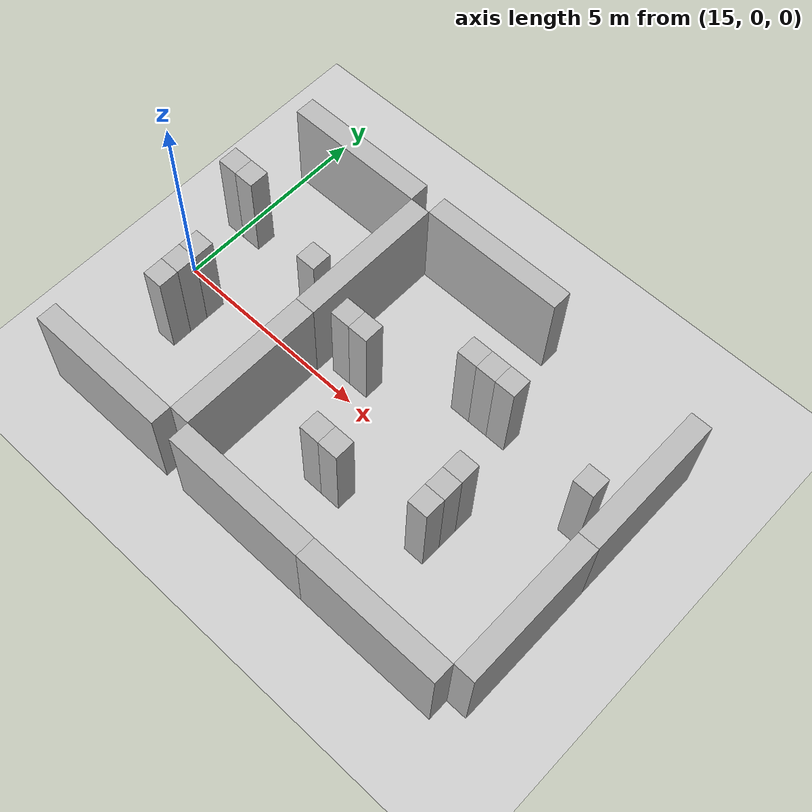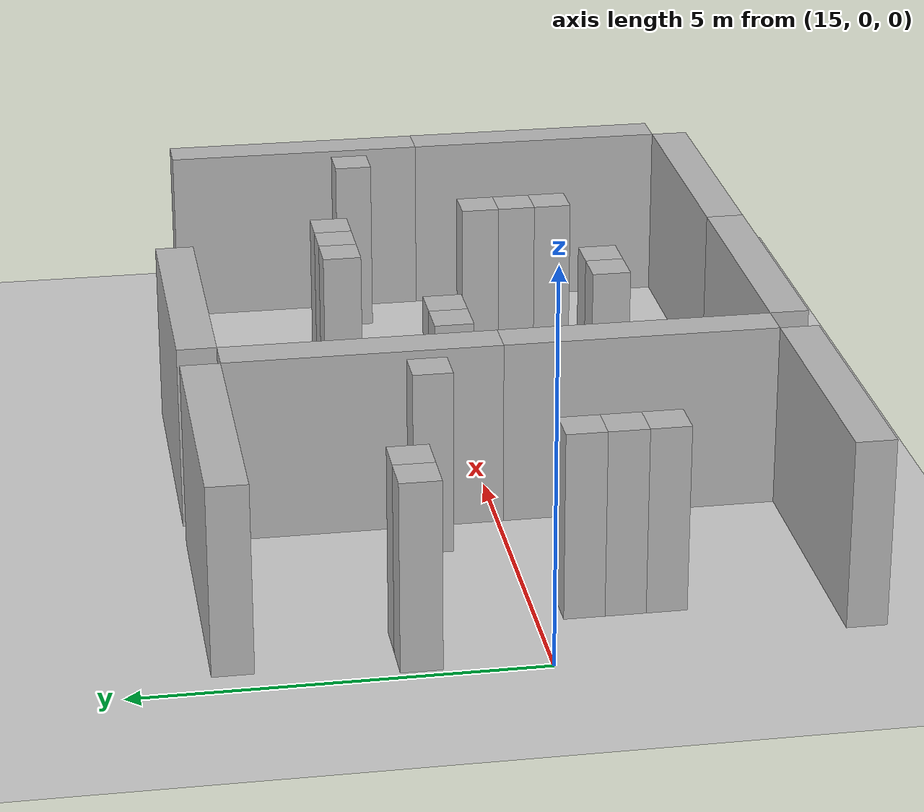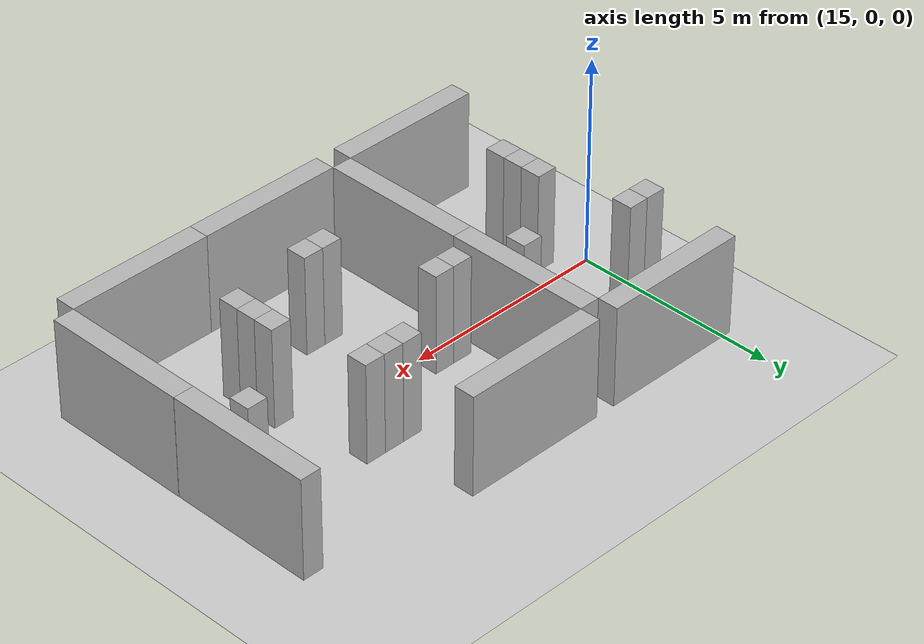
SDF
<sdf version="1.6">
 <world name="default">
  <model name="ground_plane">
   <static>1</static>
   <link name="link">
    <collision name="collision">
     <geometry><plane><normal>0 0 1</normal><size>100 100</size></plane></geometry>
     <surface><friction><ode><mu>100</mu><mu2>50</mu2></ode></friction></surface>
    </collision>
    <visual name="visual">
     <cast_shadows>0</cast_shadows>
     <geometry><plane><normal>0 0 1</normal><size>100 100</size></plane></geometry>
     <material>
      <script><uri>file://media/materials/scripts/gazebo.material</uri><name>Gazebo/Grey</name></script>
     </material>
    </visual>
   </link>
  </model>
  <model name="mywall0_1_clone_1_clone_0">
   <static>1</static>
   <link name="link">
    <pose>0 0 1.4 0 -0 0</pose>
    <collision name="collision"><geometry><box><size>3.5 0.5 2.4</size></box></geometry></collision>
    <visual name="visual">
     <cast_shadows>0</cast_shadows>
     <geometry><box><size>3.5 0.5 2.4</size></box></geometry>
     <material>
      <script>
       <uri>model://mywall0/materials/scripts</uri>
       <uri>model://mywall0/materials/textures</uri>
       <name>vrc/mywall0</name>
      </script>
     </material>
    </visual>
   </link>
   <pose>16.75 3.75 0 0 -0 0</pose>
  </model>
  <model name="mywall0_1_clone_1_clone_1">
   <static>1</static>
   <link name="link">
    <pose>0 0 1.4 0 -0 0</pose>
    <collision name="collision"><geometry><box><size>3.5 0.5 2.4</size></box></geometry></collision>
    <visual name="visual">
     <cast_shadows>0</cast_shadows>
     <geometry><box><size>3.5 0.5 2.4</size></box></geometry>
     <material>
      <script>
       <uri>model://mywall0/materials/scripts</uri>
       <uri>model://mywall0/materials/textures</uri>
       <name>vrc/mywall0</name>
      </script>
     </material>
    </visual>
   </link>
   <pose>16.75 -3.75 0 0 -0 0</pose>
  </model>
  <model name="mywall0_4_clone_0_clone_clone_0">
   <static>1</static>
   <link name="link">
    <pose>0 0 1.4 0 -0 0</pose>
    <collision name="collision"><geometry><box><size>3.5 0.5 2.4</size></box></geometry></collision>
    <visual name="visual">
     <cast_shadows>0</cast_shadows>
     <geometry><box><size>3.5 0.5 2.4</size></box></geometry>
     <material>
      <script>
       <uri>model://mywall0/materials/scripts</uri>
       <uri>model://mywall0/materials/textures</uri>
       <name>vrc/mywall0</name>
      </script>
     </material>
    </visual>
   </link>
   <pose>18.75 1.75 0 0 -0 1.57</pose>
  </model>
  <model name="mywall0_4_clone_0_clone_clone_0_clone">
   <static>1</static>
   <link name="link">
    <pose>0 0 1.4 0 -0 0</pose>
    <collision name="collision"><geometry><box><size>3.5 0.5 2.4</size></box></geometry></collision>
    <visual name="visual">
     <cast_shadows>0</cast_shadows>
     <geometry><box><size>3.5 0.5 2.4</size></box></geometry>
     <material>
      <script>
       <uri>model://mywall0/materials/scripts</uri>
       <uri>model://mywall0/materials/textures</uri>
       <name>vrc/mywall0</name>
      </script>
     </material>
    </visual>
   </link>
   <pose>18.75 -1.75 0 0 -0 1.57</pose>
  </model>
  <model name="mywall0_1_clone_1_clone_2">
   <static>1</static>
   <link name="link">
    <pose>0 0 1.4 0 -0 0</pose>
    <collision name="collision"><geometry><box><size>3.5 0.5 2.4</size></box></geometry></collision>
    <visual name="visual">
     <cast_shadows>0</cast_shadows>
     <geometry><box><size>3.5 0.5 2.4</size></box></geometry>
     <material>
      <script>
       <uri>model://mywall0/materials/scripts</uri>
       <uri>model://mywall0/materials/textures</uri>
       <name>vrc/mywall0</name>
      </script>
     </material>
    </visual>
   </link>
   <pose>20.75 3.75 0 0 -0 0</pose>
  </model>
  <model name="mywall0_1_clone_1_clone_4">
   <static>1</static>
   <link name="link">
    <pose>0 0 1.4 0 -0 0</pose>
    <collision name="collision"><geometry><box><size>3.5 0.5 2.4</size></box></geometry></collision>
    <visual name="visual">
     <cast_shadows>0</cast_shadows>
     <geometry><box><size>3.5 0.5 2.4</size></box></geometry>
     <material>
      <script>
       <uri>model://mywall0/materials/scripts</uri>
       <uri>model://mywall0/materials/textures</uri>
       <name>vrc/mywall0</name>
      </script>
     </material>
    </visual>
   </link>
   <pose>20.75 -3.75 0 0 -0 0</pose>
  </model>
  <model name="mywall0_1_clone_1_clone_5">
   <static>1</static>
   <link name="link">
    <pose>0 0 1.4 0 -0 0</pose>
    <collision name="collision"><geometry><box><size>3.5 0.5 2.4</size></box></geometry></collision>
    <visual name="visual">
     <cast_shadows>0</cast_shadows>
     <geometry><box><size>3.5 0.5 2.4</size></box></geometry>
     <material>
      <script>
       <uri>model://mywall0/materials/scripts</uri>
       <uri>model://mywall0/materials/textures</uri>
       <name>vrc/mywall0</name>
      </script>
     </material>
    </visual>
   </link>
   <pose>24.25 -3.75 0 0 -0 0</pose>
  </model>
  <model name="mywall0_4_clone_0_clone_clone_0_clone_0">
   <static>1</static>
   <link name="link">
    <pose>0 0 1.4 0 -0 0</pose>
    <collision name="collision"><geometry><box><size>3.5 0.5 2.4</size></box></geometry></collision>
    <visual name="visual">
     <cast_shadows>0</cast_shadows>
     <geometry><box><size>3.5 0.5 2.4</size></box></geometry>
     <material>
      <script>
       <uri>model://mywall0/materials/scripts</uri>
       <uri>model://mywall0/materials/textures</uri>
       <name>vrc/mywall0</name>
      </script>
     </material>
    </visual>
   </link>
   <pose>26.25 1.75 0 0 -0 1.57</pose>
  </model>
  <model name="mywall0_4_clone_0_clone_clone_0_clone_1">
   <static>1</static>
   <link name="link">
    <pose>0 0 1.4 0 -0 0</pose>
    <collision name="collision"><geometry><box><size>3.5 0.5 2.4</size></box></geometry></collision>
    <visual name="visual">
     <cast_shadows>0</cast_shadows>
     <geometry><box><size>3.5 0.5 2.4</size></box></geometry>
     <material>
      <script>
       <uri>model://mywall0/materials/scripts</uri>
       <uri>model://mywall0/materials/textures</uri>
       <name>vrc/mywall0</name>
      </script>
     </material>
    </visual>
   </link>
   <pose>26.25 -1.75 0 0 -0 1.57</pose>
  </model>
  <model name="mypillar_1_clone_clone">
   <static>1</static>
   <link name="link">
    <pose>0 0 1.4 0 -0 0</pose>
    <collision name="collision"><geometry><box><size>0.5 0.5 2.4</size></box></geometry></collision>
    <visual name="visual">
     <cast_shadows>0</cast_shadows>
     <geometry><box><size>0.5 0.5 2.4</size></box></geometry>
     <material>
      <script>
       <uri>model://mypillar/materials/scripts</uri>
       <uri>model://mypillar/materials/textures</uri>
       <name>vrc/mypillar</name>
      </script>
     </material>
    </visual>
   </link>
   <pose>15 1.6 0 0 -0 0</pose>
  </model>
  <model name="mypillar_1_clone_clone_0">
   <static>1</static>
   <link name="link">
    <pose>0 0 1.4 0 -0 0</pose>
    <collision name="collision"><geometry><box><size>0.5 0.5 2.4</size></box></geometry></collision>
    <visual name="visual">
     <cast_shadows>0</cast_shadows>
     <geometry><box><size>0.5 0.5 2.4</size></box></geometry>
     <material>
      <script>
       <uri>model://mypillar/materials/scripts</uri>
       <uri>model://mypillar/materials/textures</uri>
       <name>vrc/mypillar</name>
      </script>
     </material>
    </visual>
   </link>
   <pose>15.5 1.6 0 0 -0 0</pose>
  </model>
  <model name="mypillar_1_clone_clone_4">
   <static>1</static>
   <link name="link">
    <pose>0 0 1.4 0 -0 0</pose>
    <collision name="collision"><geometry><box><size>0.5 0.5 2.4</size></box></geometry></collision>
    <visual name="visual">
     <cast_shadows>0</cast_shadows>
     <geometry><box><size>0.5 0.5 2.4</size></box></geometry>
     <material>
      <script>
       <uri>model://mypillar/materials/scripts</uri>
       <uri>model://mypillar/materials/textures</uri>
       <name>vrc/mypillar</name>
      </script>
     </material>
    </visual>
   </link>
   <pose>16 -1.5 0 0 -0 0</pose>
  </model>
  <model name="mypillar_1_clone_clone_4_clone">
   <static>1</static>
   <link name="link">
    <pose>0 0 1.4 0 -0 0</pose>
    <collision name="collision"><geometry><box><size>0.5 0.5 2.4</size></box></geometry></collision>
    <visual name="visual">
     <cast_shadows>0</cast_shadows>
     <geometry><box><size>0.5 0.5 2.4</size></box></geometry>
     <material>
      <script>
       <uri>model://mypillar/materials/scripts</uri>
       <uri>model://mypillar/materials/textures</uri>
       <name>vrc/mypillar</name>
      </script>
     </material>
    </visual>
   </link>
   <pose>16 -1 0 0 -0 0</pose>
  </model>
  <model name="mypillar_1_clone_clone_4_clone_0">
   <static>1</static>
   <link name="link">
    <pose>0 0 1.4 0 -0 0</pose>
    <collision name="collision"><geometry><box><size>0.5 0.5 2.4</size></box></geometry></collision>
    <visual name="visual">
     <cast_shadows>0</cast_shadows>
     <geometry><box><size>0.5 0.5 2.4</size></box></geometry>
     <material>
      <script>
       <uri>model://mypillar/materials/scripts</uri>
       <uri>model://mypillar/materials/textures</uri>
       <name>vrc/mypillar</name>
      </script>
     </material>
    </visual>
   </link>
   <pose>16 -0.5 0 0 -0 0</pose>
  </model>
  <model name="mypillar_1_clone_clone_4_clone_1">
   <static>1</static>
   <link name="link">
    <pose>0 0 1.4 0 -0 0</pose>
    <collision name="collision"><geometry><box><size>0.5 0.5 2.4</size></box></geometry></collision>
    <visual name="visual">
     <cast_shadows>0</cast_shadows>
     <geometry><box><size>0.5 0.5 2.4</size></box></geometry>
     <material>
      <script>
       <uri>model://mypillar/materials/scripts</uri>
       <uri>model://mypillar/materials/textures</uri>
       <name>vrc/mypillar</name>
      </script>
     </material>
    </visual>
   </link>
   <pose>18 1 0 0 -0 0</pose>
  </model>
  <model name="mypillar_1_clone_clone_4_clone_2_clone_21">
   <static>1</static>
   <link name="link">
    <pose>0 0 1.4 0 -0 0</pose>
    <collision name="collision"><geometry><box><size>0.5 0.5 2.4</size></box></geometry></collision>
    <visual name="visual">
     <cast_shadows>0</cast_shadows>
     <geometry><box><size>0.5 0.5 2.4</size></box></geometry>
     <material>
      <script>
       <uri>model://mypillar/materials/scripts</uri>
       <uri>model://mypillar/materials/textures</uri>
       <name>vrc/mypillar</name>
      </script>
     </material>
    </visual>
   </link>
   <pose>19.5 0.5 0 0 -0 0</pose>
  </model>
  <model name="mypillar_1_clone_clone_4_clone_2_clone_22">
   <static>1</static>
   <link name="link">
    <pose>0 0 1.4 0 -0 0</pose>
    <collision name="collision"><geometry><box><size>0.5 0.5 2.4</size></box></geometry></collision>
    <visual name="visual">
     <cast_shadows>0</cast_shadows>
     <geometry><box><size>0.5 0.5 2.4</size></box></geometry>
     <material>
      <script>
       <uri>model://mypillar/materials/scripts</uri>
       <uri>model://mypillar/materials/textures</uri>
       <name>vrc/mypillar</name>
      </script>
     </material>
    </visual>
   </link>
   <pose>20 0.5 0 0 -0 0</pose>
  </model>
  <model name="mypillar_1_clone_clone_4_clone_2_clone_23">
   <static>1</static>
   <link name="link">
    <pose>0 0 1.4 0 -0 0</pose>
    <collision name="collision"><geometry><box><size>0.5 0.5 2.4</size></box></geometry></collision>
    <visual name="visual">
     <cast_shadows>0</cast_shadows>
     <geometry><box><size>0.5 0.5 2.4</size></box></geometry>
     <material>
      <script>
       <uri>model://mypillar/materials/scripts</uri>
       <uri>model://mypillar/materials/textures</uri>
       <name>vrc/mypillar</name>
      </script>
     </material>
    </visual>
   </link>
   <pose>22 1.6 0 0 -0 0</pose>
  </model>
  <model name="mypillar_1_clone_clone_4_clone_2_clone_24">
   <static>1</static>
   <link name="link">
    <pose>0 0 1.4 0 -0 0</pose>
    <collision name="collision"><geometry><box><size>0.5 0.5 2.4</size></box></geometry></collision>
    <visual name="visual">
     <cast_shadows>0</cast_shadows>
     <geometry><box><size>0.5 0.5 2.4</size></box></geometry>
     <material>
      <script>
       <uri>model://mypillar/materials/scripts</uri>
       <uri>model://mypillar/materials/textures</uri>
       <name>vrc/mypillar</name>
      </script>
     </material>
    </visual>
   </link>
   <pose>22.5 1.6 0 0 -0 0</pose>
  </model>
  <model name="mypillar_1_clone_clone_4_clone_2_clone_25">
   <static>1</static>
   <link name="link">
    <pose>0 0 1.4 0 -0 0</pose>
    <collision name="collision"><geometry><box><size>0.5 0.5 2.4</size></box></geometry></collision>
    <visual name="visual">
     <cast_shadows>0</cast_shadows>
     <geometry><box><size>0.5 0.5 2.4</size></box></geometry>
     <material>
      <script>
       <uri>model://mypillar/materials/scripts</uri>
       <uri>model://mypillar/materials/textures</uri>
       <name>vrc/mypillar</name>
      </script>
     </material>
    </visual>
   </link>
   <pose>23 1.6 0 0 -0 0</pose>
  </model>
  <model name="mypillar_1_clone_clone_4_clone_2_clone_26">
   <static>1</static>
   <link name="link">
    <pose>0 0 1.4 0 -0 0</pose>
    <collision name="collision"><geometry><box><size>0.5 0.5 2.4</size></box></geometry></collision>
    <visual name="visual">
     <cast_shadows>0</cast_shadows>
     <geometry><box><size>0.5 0.5 2.4</size></box></geometry>
     <material>
      <script>
       <uri>model://mypillar/materials/scripts</uri>
       <uri>model://mypillar/materials/textures</uri>
       <name>vrc/mypillar</name>
      </script>
     </material>
    </visual>
   </link>
   <pose>25.5 1 0 0 -0 0</pose>
  </model>
  <model name="mypillar_1_clone_clone_4_clone_2_clone_27">
   <static>1</static>
   <link name="link">
    <pose>0 0 1.4 0 -0 0</pose>
    <collision name="collision"><geometry><box><size>0.5 0.5 2.4</size></box></geometry></collision>
    <visual name="visual">
     <cast_shadows>0</cast_shadows>
     <geometry><box><size>0.5 0.5 2.4</size></box></geometry>
     <material>
      <script>
       <uri>model://mypillar/materials/scripts</uri>
       <uri>model://mypillar/materials/textures</uri>
       <name>vrc/mypillar</name>
      </script>
     </material>
    </visual>
   </link>
   <pose>23.5 -1 0 0 -0 0</pose>
  </model>
  <model name="mypillar_1_clone_clone_4_clone_2_clone_28">
   <static>1</static>
   <link name="link">
    <pose>0 0 1.4 0 -0 0</pose>
    <collision name="collision"><geometry><box><size>0.5 0.5 2.4</size></box></geometry></collision>
    <visual name="visual">
     <cast_shadows>0</cast_shadows>
     <geometry><box><size>0.5 0.5 2.4</size></box></geometry>
     <material>
      <script>
       <uri>model://mypillar/materials/scripts</uri>
       <uri>model://mypillar/materials/textures</uri>
       <name>vrc/mypillar</name>
      </script>
     </material>
    </visual>
   </link>
   <pose>23.5 -1.5 0 0 -0 0</pose>
  </model>
  <model name="mypillar_1_clone_clone_4_clone_2_clone_29">
   <static>1</static>
   <link name="link">
    <pose>0 0 1.4 0 -0 0</pose>
    <collision name="collision"><geometry><box><size>0.5 0.5 2.4</size></box></geometry></collision>
    <visual name="visual">
     <cast_shadows>0</cast_shadows>
     <geometry><box><size>0.5 0.5 2.4</size></box></geometry>
     <material>
      <script>
       <uri>model://mypillar/materials/scripts</uri>
       <uri>model://mypillar/materials/textures</uri>
       <name>vrc/mypillar</name>
      </script>
     </material>
    </visual>
   </link>
   <pose>23.5 -0.5 0 0 -0 0</pose>
  </model>
  <model name="mypillar_1_clone_clone_4_clone_2_clone_30">
   <static>1</static>
   <link name="link">
    <pose>0 0 1.4 0 -0 0</pose>
    <collision name="collision"><geometry><box><size>0.5 0.5 2.4</size></box></geometry></collision>
    <visual name="visual">
     <cast_shadows>0</cast_shadows>
     <geometry><box><size>0.5 0.5 2.4</size></box></geometry>
     <material>
      <script>
       <uri>model://mypillar/materials/scripts</uri>
       <uri>model://mypillar/materials/textures</uri>
       <name>vrc/mypillar</name>
      </script>
     </material>
    </visual>
   </link>
   <pose>20.9 -1.8 0 0 -0 0</pose>
  </model>
  <model name="mypillar_1_clone_clone_4_clone_2_clone_31">
   <static>1</static>
   <link name="link">
    <pose>0 0 1.4 0 -0 0</pose>
    <collision name="collision"><geometry><box><size>0.5 0.5 2.4</size></box></geometry></collision>
    <visual name="visual">
     <cast_shadows>0</cast_shadows>
     <geometry><box><size>0.5 0.5 2.4</size></box></geometry>
     <material>
      <script>
       <uri>model://mypillar/materials/scripts</uri>
       <uri>model://mypillar/materials/textures</uri>
       <name>vrc/mypillar</name>
      </script>
     </material>
    </visual>
   </link>
   <pose>21.4 -1.8 0 0 -0 0</pose>
  </model>
 </world>
</sdf>
